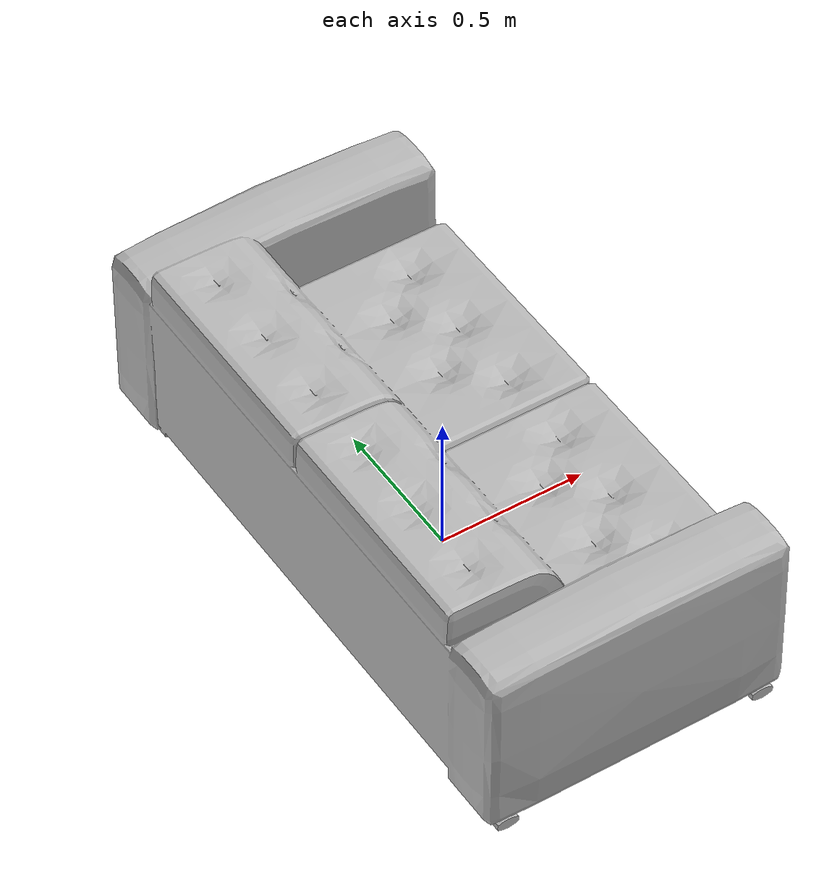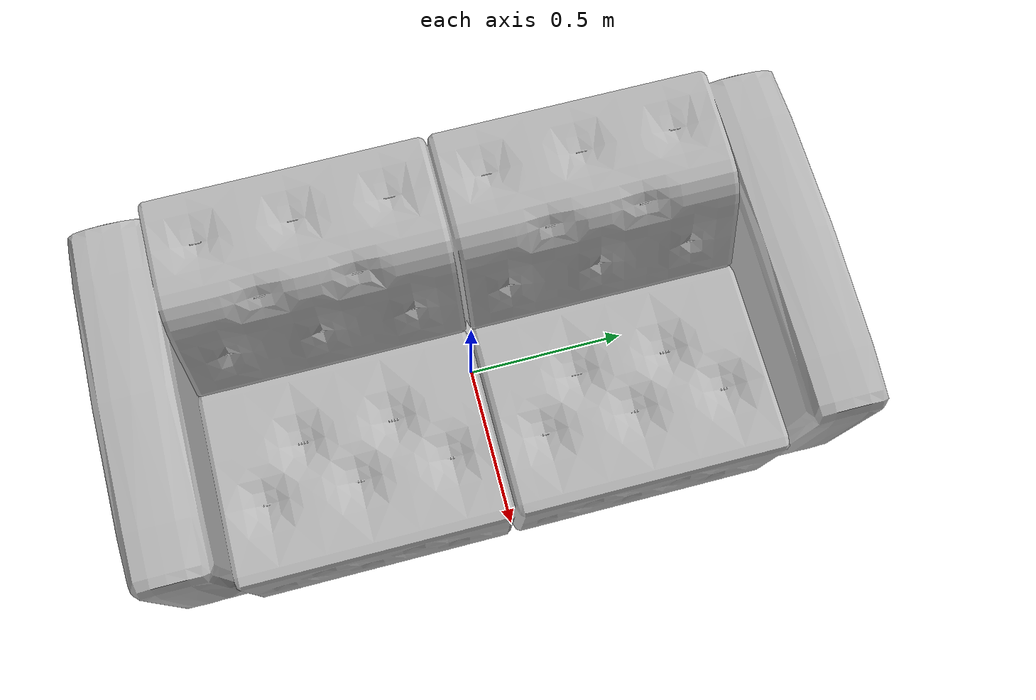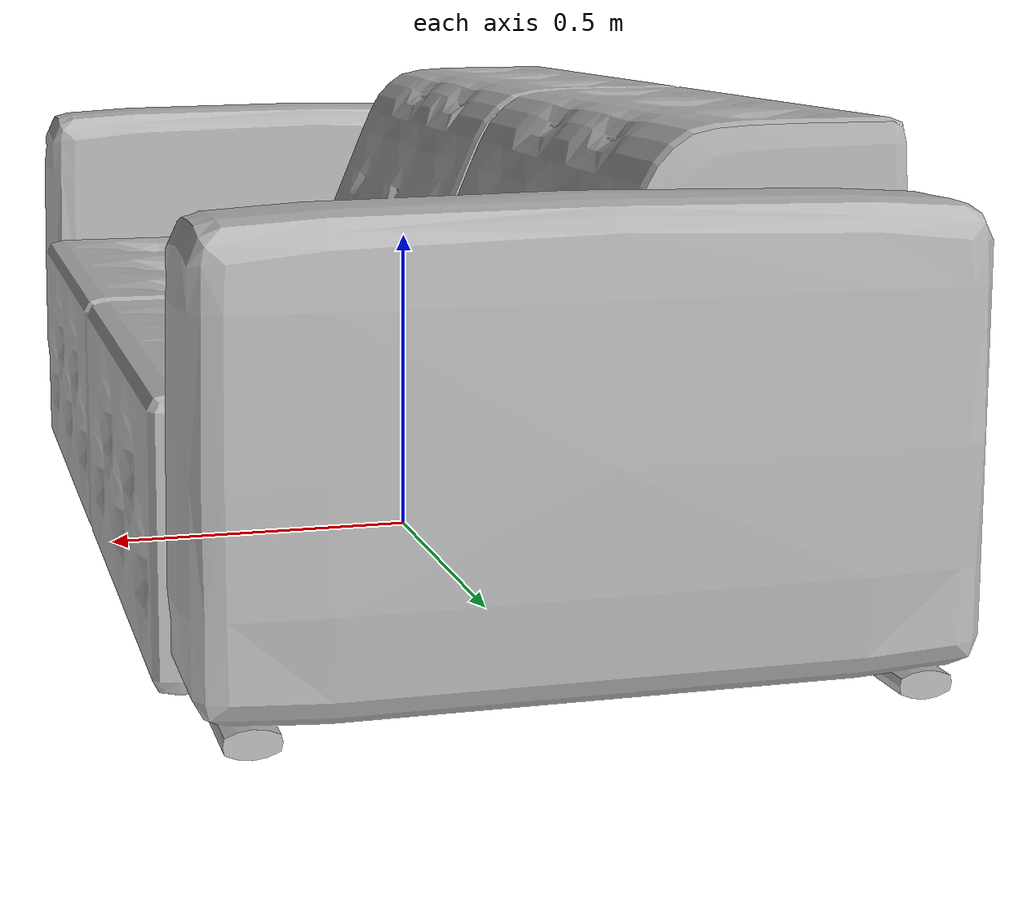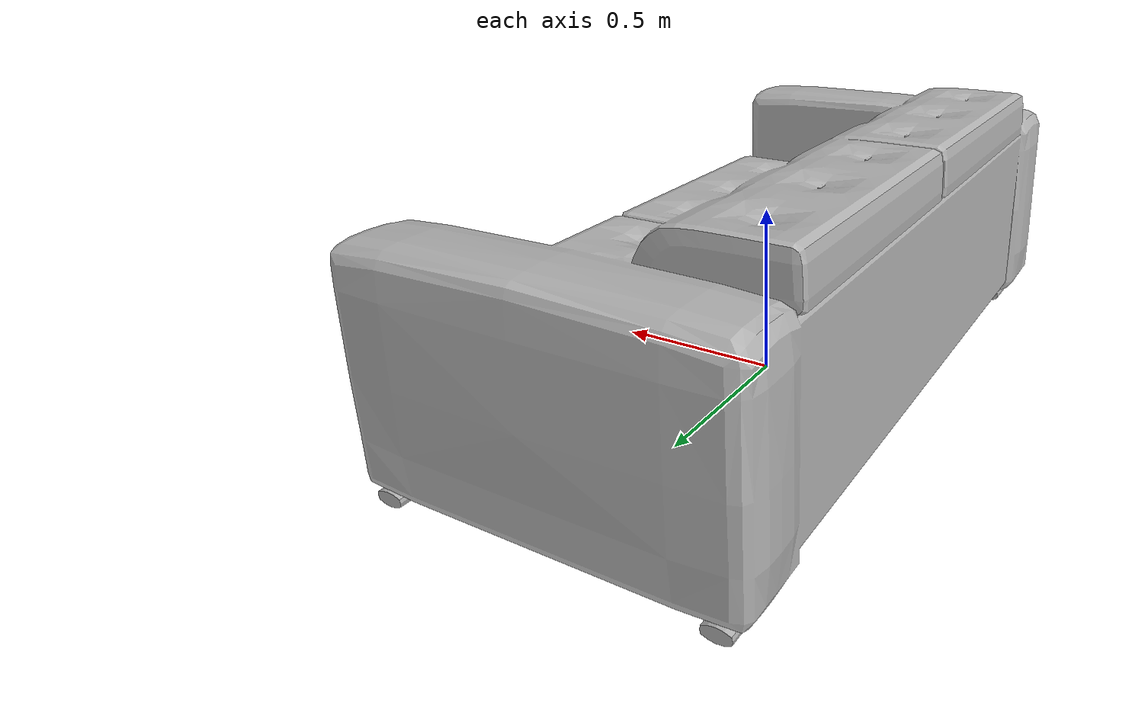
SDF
<?xml version='1.0'?>
<sdf version='1.4'>
  <model name='260'>
    <pose>0 0 0 0 0 0</pose>
    <static>true</static>
    <link name='link'>
      <collision name='collision'>
        <pose>0 0 0 0 0 0</pose>
        <geometry>
          <box>
            <size>1.07 2.1 2</size>
          </box>
        </geometry>
      </collision>
      <visual name='visual'>
        <pose>0 0 0 0 0 0</pose>
        <geometry>
          <mesh><uri>model://260/260.dae</uri></mesh>
        </geometry>
      </visual>
    </link>
  </model>
</sdf>
